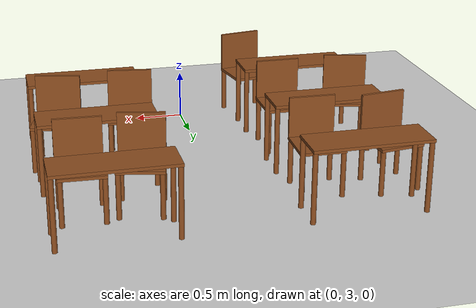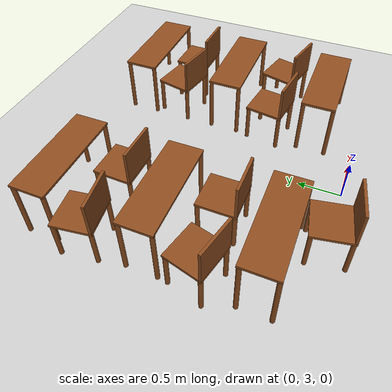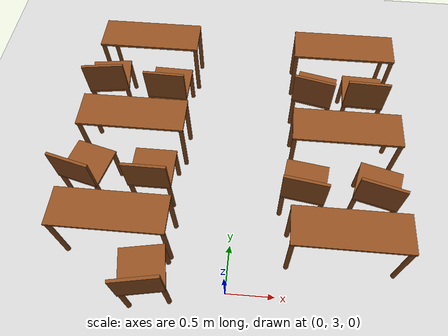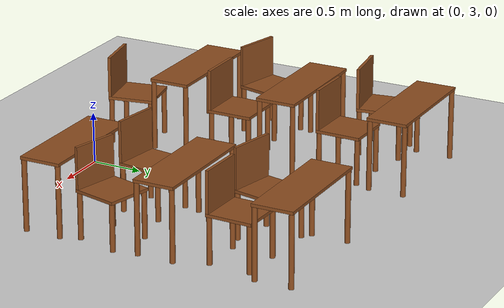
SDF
<sdf version="1.6">
 <world name="lecture_hall_real">
  <include><uri>model://ground_plane</uri></include>
  <include><uri>model://sun</uri></include>
  <model name="desk_1_1">
   <static>true</static>
   <pose>-1.150 5.800 0 0 0 0</pose>
   <link name="link">
    <collision name="c_leg0">
     <pose>-0.550 -0.175 0.345 0 0 0</pose>
     <geometry><cylinder><radius>0.025</radius><length>0.690</length></cylinder></geometry>
    </collision>
    <visual name="v_leg0">
     <pose>-0.550 -0.175 0.345 0 0 0</pose>
     <geometry><cylinder><radius>0.025</radius><length>0.690</length></cylinder></geometry>
     <material><ambient>0.45 0.25 0.1 1</ambient><diffuse>0.55 0.3 0.12 1</diffuse></material>
    </visual>
    <collision name="c_leg1">
     <pose>-0.550 0.175 0.345 0 0 0</pose>
     <geometry><cylinder><radius>0.025</radius><length>0.690</length></cylinder></geometry>
    </collision>
    <visual name="v_leg1">
     <pose>-0.550 0.175 0.345 0 0 0</pose>
     <geometry><cylinder><radius>0.025</radius><length>0.690</length></cylinder></geometry>
     <material><ambient>0.45 0.25 0.1 1</ambient><diffuse>0.55 0.3 0.12 1</diffuse></material>
    </visual>
    <collision name="c_leg2">
     <pose>0.550 -0.175 0.345 0 0 0</pose>
     <geometry><cylinder><radius>0.025</radius><length>0.690</length></cylinder></geometry>
    </collision>
    <visual name="v_leg2">
     <pose>0.550 -0.175 0.345 0 0 0</pose>
     <geometry><cylinder><radius>0.025</radius><length>0.690</length></cylinder></geometry>
     <material><ambient>0.45 0.25 0.1 1</ambient><diffuse>0.55 0.3 0.12 1</diffuse></material>
    </visual>
    <collision name="c_leg3">
     <pose>0.550 0.175 0.345 0 0 0</pose>
     <geometry><cylinder><radius>0.025</radius><length>0.690</length></cylinder></geometry>
    </collision>
    <visual name="v_leg3">
     <pose>0.550 0.175 0.345 0 0 0</pose>
     <geometry><cylinder><radius>0.025</radius><length>0.690</length></cylinder></geometry>
     <material><ambient>0.45 0.25 0.1 1</ambient><diffuse>0.55 0.3 0.12 1</diffuse></material>
    </visual>
    <collision name="c_top">
     <pose>0.000 0.000 0.705 0 0 0</pose>
     <geometry><box><size>1.150 0.400 0.030</size></box></geometry>
    </collision>
    <visual name="v_top">
     <pose>0.000 0.000 0.705 0 0 0</pose>
     <geometry><box><size>1.150 0.400 0.030</size></box></geometry>
     <material><ambient>0.45 0.25 0.1 1</ambient><diffuse>0.55 0.3 0.12 1</diffuse></material>
    </visual>
   </link>
  </model>
  <model name="chair_1_1_1">
   <static>true</static>
   <pose>-1.588 5.332 0 0 0 0.138</pose>
   <link name="link">
    <collision name="c_leg0">
     <pose>-0.200 -0.200 0.225 0 0 0</pose>
     <geometry><cylinder><radius>0.025</radius><length>0.450</length></cylinder></geometry>
    </collision>
    <visual name="v_leg0">
     <pose>-0.200 -0.200 0.225 0 0 0</pose>
     <geometry><cylinder><radius>0.025</radius><length>0.450</length></cylinder></geometry>
     <material><ambient>0.45 0.25 0.1 1</ambient><diffuse>0.55 0.3 0.12 1</diffuse></material>
    </visual>
    <collision name="c_leg1">
     <pose>-0.200 0.200 0.225 0 0 0</pose>
     <geometry><cylinder><radius>0.025</radius><length>0.450</length></cylinder></geometry>
    </collision>
    <visual name="v_leg1">
     <pose>-0.200 0.200 0.225 0 0 0</pose>
     <geometry><cylinder><radius>0.025</radius><length>0.450</length></cylinder></geometry>
     <material><ambient>0.45 0.25 0.1 1</ambient><diffuse>0.55 0.3 0.12 1</diffuse></material>
    </visual>
    <collision name="c_leg2">
     <pose>0.200 -0.200 0.225 0 0 0</pose>
     <geometry><cylinder><radius>0.025</radius><length>0.450</length></cylinder></geometry>
    </collision>
    <visual name="v_leg2">
     <pose>0.200 -0.200 0.225 0 0 0</pose>
     <geometry><cylinder><radius>0.025</radius><length>0.450</length></cylinder></geometry>
     <material><ambient>0.45 0.25 0.1 1</ambient><diffuse>0.55 0.3 0.12 1</diffuse></material>
    </visual>
    <collision name="c_leg3">
     <pose>0.200 0.200 0.225 0 0 0</pose>
     <geometry><cylinder><radius>0.025</radius><length>0.450</length></cylinder></geometry>
    </collision>
    <visual name="v_leg3">
     <pose>0.200 0.200 0.225 0 0 0</pose>
     <geometry><cylinder><radius>0.025</radius><length>0.450</length></cylinder></geometry>
     <material><ambient>0.45 0.25 0.1 1</ambient><diffuse>0.55 0.3 0.12 1</diffuse></material>
    </visual>
    <collision name="c_seat">
     <pose>0.000 0.000 0.465 0 0 0</pose>
     <geometry><box><size>0.450 0.450 0.030</size></box></geometry>
    </collision>
    <visual name="v_seat">
     <pose>0.000 0.000 0.465 0 0 0</pose>
     <geometry><box><size>0.450 0.450 0.030</size></box></geometry>
     <material><ambient>0.45 0.25 0.1 1</ambient><diffuse>0.55 0.3 0.12 1</diffuse></material>
    </visual>
    <collision name="c_back">
     <pose>0.000 -0.210 0.680 0 0 0</pose>
     <geometry><box><size>0.450 0.030 0.400</size></box></geometry>
    </collision>
    <visual name="v_back">
     <pose>0.000 -0.210 0.680 0 0 0</pose>
     <geometry><box><size>0.450 0.030 0.400</size></box></geometry>
     <material><ambient>0.45 0.25 0.1 1</ambient><diffuse>0.55 0.3 0.12 1</diffuse></material>
    </visual>
   </link>
  </model>
  <model name="chair_1_1_2">
   <static>true</static>
   <pose>-0.859 5.279 0 0 0 -0.026</pose>
   <link name="link">
    <collision name="c_leg0">
     <pose>-0.200 -0.200 0.225 0 0 0</pose>
     <geometry><cylinder><radius>0.025</radius><length>0.450</length></cylinder></geometry>
    </collision>
    <visual name="v_leg0">
     <pose>-0.200 -0.200 0.225 0 0 0</pose>
     <geometry><cylinder><radius>0.025</radius><length>0.450</length></cylinder></geometry>
     <material><ambient>0.45 0.25 0.1 1</ambient><diffuse>0.55 0.3 0.12 1</diffuse></material>
    </visual>
    <collision name="c_leg1">
     <pose>-0.200 0.200 0.225 0 0 0</pose>
     <geometry><cylinder><radius>0.025</radius><length>0.450</length></cylinder></geometry>
    </collision>
    <visual name="v_leg1">
     <pose>-0.200 0.200 0.225 0 0 0</pose>
     <geometry><cylinder><radius>0.025</radius><length>0.450</length></cylinder></geometry>
     <material><ambient>0.45 0.25 0.1 1</ambient><diffuse>0.55 0.3 0.12 1</diffuse></material>
    </visual>
    <collision name="c_leg2">
     <pose>0.200 -0.200 0.225 0 0 0</pose>
     <geometry><cylinder><radius>0.025</radius><length>0.450</length></cylinder></geometry>
    </collision>
    <visual name="v_leg2">
     <pose>0.200 -0.200 0.225 0 0 0</pose>
     <geometry><cylinder><radius>0.025</radius><length>0.450</length></cylinder></geometry>
     <material><ambient>0.45 0.25 0.1 1</ambient><diffuse>0.55 0.3 0.12 1</diffuse></material>
    </visual>
    <collision name="c_leg3">
     <pose>0.200 0.200 0.225 0 0 0</pose>
     <geometry><cylinder><radius>0.025</radius><length>0.450</length></cylinder></geometry>
    </collision>
    <visual name="v_leg3">
     <pose>0.200 0.200 0.225 0 0 0</pose>
     <geometry><cylinder><radius>0.025</radius><length>0.450</length></cylinder></geometry>
     <material><ambient>0.45 0.25 0.1 1</ambient><diffuse>0.55 0.3 0.12 1</diffuse></material>
    </visual>
    <collision name="c_seat">
     <pose>0.000 0.000 0.465 0 0 0</pose>
     <geometry><box><size>0.450 0.450 0.030</size></box></geometry>
    </collision>
    <visual name="v_seat">
     <pose>0.000 0.000 0.465 0 0 0</pose>
     <geometry><box><size>0.450 0.450 0.030</size></box></geometry>
     <material><ambient>0.45 0.25 0.1 1</ambient><diffuse>0.55 0.3 0.12 1</diffuse></material>
    </visual>
    <collision name="c_back">
     <pose>0.000 -0.210 0.680 0 0 0</pose>
     <geometry><box><size>0.450 0.030 0.400</size></box></geometry>
    </collision>
    <visual name="v_back">
     <pose>0.000 -0.210 0.680 0 0 0</pose>
     <geometry><box><size>0.450 0.030 0.400</size></box></geometry>
     <material><ambient>0.45 0.25 0.1 1</ambient><diffuse>0.55 0.3 0.12 1</diffuse></material>
    </visual>
   </link>
  </model>
  <model name="desk_1_2">
   <static>true</static>
   <pose>1.150 5.800 0 0 0 0</pose>
   <link name="link">
    <collision name="c_leg0">
     <pose>-0.550 -0.175 0.345 0 0 0</pose>
     <geometry><cylinder><radius>0.025</radius><length>0.690</length></cylinder></geometry>
    </collision>
    <visual name="v_leg0">
     <pose>-0.550 -0.175 0.345 0 0 0</pose>
     <geometry><cylinder><radius>0.025</radius><length>0.690</length></cylinder></geometry>
     <material><ambient>0.45 0.25 0.1 1</ambient><diffuse>0.55 0.3 0.12 1</diffuse></material>
    </visual>
    <collision name="c_leg1">
     <pose>-0.550 0.175 0.345 0 0 0</pose>
     <geometry><cylinder><radius>0.025</radius><length>0.690</length></cylinder></geometry>
    </collision>
    <visual name="v_leg1">
     <pose>-0.550 0.175 0.345 0 0 0</pose>
     <geometry><cylinder><radius>0.025</radius><length>0.690</length></cylinder></geometry>
     <material><ambient>0.45 0.25 0.1 1</ambient><diffuse>0.55 0.3 0.12 1</diffuse></material>
    </visual>
    <collision name="c_leg2">
     <pose>0.550 -0.175 0.345 0 0 0</pose>
     <geometry><cylinder><radius>0.025</radius><length>0.690</length></cylinder></geometry>
    </collision>
    <visual name="v_leg2">
     <pose>0.550 -0.175 0.345 0 0 0</pose>
     <geometry><cylinder><radius>0.025</radius><length>0.690</length></cylinder></geometry>
     <material><ambient>0.45 0.25 0.1 1</ambient><diffuse>0.55 0.3 0.12 1</diffuse></material>
    </visual>
    <collision name="c_leg3">
     <pose>0.550 0.175 0.345 0 0 0</pose>
     <geometry><cylinder><radius>0.025</radius><length>0.690</length></cylinder></geometry>
    </collision>
    <visual name="v_leg3">
     <pose>0.550 0.175 0.345 0 0 0</pose>
     <geometry><cylinder><radius>0.025</radius><length>0.690</length></cylinder></geometry>
     <material><ambient>0.45 0.25 0.1 1</ambient><diffuse>0.55 0.3 0.12 1</diffuse></material>
    </visual>
    <collision name="c_top">
     <pose>0.000 0.000 0.705 0 0 0</pose>
     <geometry><box><size>1.150 0.400 0.030</size></box></geometry>
    </collision>
    <visual name="v_top">
     <pose>0.000 0.000 0.705 0 0 0</pose>
     <geometry><box><size>1.150 0.400 0.030</size></box></geometry>
     <material><ambient>0.45 0.25 0.1 1</ambient><diffuse>0.55 0.3 0.12 1</diffuse></material>
    </visual>
   </link>
  </model>
  <model name="chair_1_2_1">
   <static>true</static>
   <pose>0.836 5.323 0 0 0 -0.213</pose>
   <link name="link">
    <collision name="c_leg0">
     <pose>-0.200 -0.200 0.225 0 0 0</pose>
     <geometry><cylinder><radius>0.025</radius><length>0.450</length></cylinder></geometry>
    </collision>
    <visual name="v_leg0">
     <pose>-0.200 -0.200 0.225 0 0 0</pose>
     <geometry><cylinder><radius>0.025</radius><length>0.450</length></cylinder></geometry>
     <material><ambient>0.45 0.25 0.1 1</ambient><diffuse>0.55 0.3 0.12 1</diffuse></material>
    </visual>
    <collision name="c_leg1">
     <pose>-0.200 0.200 0.225 0 0 0</pose>
     <geometry><cylinder><radius>0.025</radius><length>0.450</length></cylinder></geometry>
    </collision>
    <visual name="v_leg1">
     <pose>-0.200 0.200 0.225 0 0 0</pose>
     <geometry><cylinder><radius>0.025</radius><length>0.450</length></cylinder></geometry>
     <material><ambient>0.45 0.25 0.1 1</ambient><diffuse>0.55 0.3 0.12 1</diffuse></material>
    </visual>
    <collision name="c_leg2">
     <pose>0.200 -0.200 0.225 0 0 0</pose>
     <geometry><cylinder><radius>0.025</radius><length>0.450</length></cylinder></geometry>
    </collision>
    <visual name="v_leg2">
     <pose>0.200 -0.200 0.225 0 0 0</pose>
     <geometry><cylinder><radius>0.025</radius><length>0.450</length></cylinder></geometry>
     <material><ambient>0.45 0.25 0.1 1</ambient><diffuse>0.55 0.3 0.12 1</diffuse></material>
    </visual>
    <collision name="c_leg3">
     <pose>0.200 0.200 0.225 0 0 0</pose>
     <geometry><cylinder><radius>0.025</radius><length>0.450</length></cylinder></geometry>
    </collision>
    <visual name="v_leg3">
     <pose>0.200 0.200 0.225 0 0 0</pose>
     <geometry><cylinder><radius>0.025</radius><length>0.450</length></cylinder></geometry>
     <material><ambient>0.45 0.25 0.1 1</ambient><diffuse>0.55 0.3 0.12 1</diffuse></material>
    </visual>
    <collision name="c_seat">
     <pose>0.000 0.000 0.465 0 0 0</pose>
     <geometry><box><size>0.450 0.450 0.030</size></box></geometry>
    </collision>
    <visual name="v_seat">
     <pose>0.000 0.000 0.465 0 0 0</pose>
     <geometry><box><size>0.450 0.450 0.030</size></box></geometry>
     <material><ambient>0.45 0.25 0.1 1</ambient><diffuse>0.55 0.3 0.12 1</diffuse></material>
    </visual>
    <collision name="c_back">
     <pose>0.000 -0.210 0.680 0 0 0</pose>
     <geometry><box><size>0.450 0.030 0.400</size></box></geometry>
    </collision>
    <visual name="v_back">
     <pose>0.000 -0.210 0.680 0 0 0</pose>
     <geometry><box><size>0.450 0.030 0.400</size></box></geometry>
     <material><ambient>0.45 0.25 0.1 1</ambient><diffuse>0.55 0.3 0.12 1</diffuse></material>
    </visual>
   </link>
  </model>
  <model name="chair_1_2_2">
   <static>true</static>
   <pose>1.387 5.330 0 0 0 -0.035</pose>
   <link name="link">
    <collision name="c_leg0">
     <pose>-0.200 -0.200 0.225 0 0 0</pose>
     <geometry><cylinder><radius>0.025</radius><length>0.450</length></cylinder></geometry>
    </collision>
    <visual name="v_leg0">
     <pose>-0.200 -0.200 0.225 0 0 0</pose>
     <geometry><cylinder><radius>0.025</radius><length>0.450</length></cylinder></geometry>
     <material><ambient>0.45 0.25 0.1 1</ambient><diffuse>0.55 0.3 0.12 1</diffuse></material>
    </visual>
    <collision name="c_leg1">
     <pose>-0.200 0.200 0.225 0 0 0</pose>
     <geometry><cylinder><radius>0.025</radius><length>0.450</length></cylinder></geometry>
    </collision>
    <visual name="v_leg1">
     <pose>-0.200 0.200 0.225 0 0 0</pose>
     <geometry><cylinder><radius>0.025</radius><length>0.450</length></cylinder></geometry>
     <material><ambient>0.45 0.25 0.1 1</ambient><diffuse>0.55 0.3 0.12 1</diffuse></material>
    </visual>
    <collision name="c_leg2">
     <pose>0.200 -0.200 0.225 0 0 0</pose>
     <geometry><cylinder><radius>0.025</radius><length>0.450</length></cylinder></geometry>
    </collision>
    <visual name="v_leg2">
     <pose>0.200 -0.200 0.225 0 0 0</pose>
     <geometry><cylinder><radius>0.025</radius><length>0.450</length></cylinder></geometry>
     <material><ambient>0.45 0.25 0.1 1</ambient><diffuse>0.55 0.3 0.12 1</diffuse></material>
    </visual>
    <collision name="c_leg3">
     <pose>0.200 0.200 0.225 0 0 0</pose>
     <geometry><cylinder><radius>0.025</radius><length>0.450</length></cylinder></geometry>
    </collision>
    <visual name="v_leg3">
     <pose>0.200 0.200 0.225 0 0 0</pose>
     <geometry><cylinder><radius>0.025</radius><length>0.450</length></cylinder></geometry>
     <material><ambient>0.45 0.25 0.1 1</ambient><diffuse>0.55 0.3 0.12 1</diffuse></material>
    </visual>
    <collision name="c_seat">
     <pose>0.000 0.000 0.465 0 0 0</pose>
     <geometry><box><size>0.450 0.450 0.030</size></box></geometry>
    </collision>
    <visual name="v_seat">
     <pose>0.000 0.000 0.465 0 0 0</pose>
     <geometry><box><size>0.450 0.450 0.030</size></box></geometry>
     <material><ambient>0.45 0.25 0.1 1</ambient><diffuse>0.55 0.3 0.12 1</diffuse></material>
    </visual>
    <collision name="c_back">
     <pose>0.000 -0.210 0.680 0 0 0</pose>
     <geometry><box><size>0.450 0.030 0.400</size></box></geometry>
    </collision>
    <visual name="v_back">
     <pose>0.000 -0.210 0.680 0 0 0</pose>
     <geometry><box><size>0.450 0.030 0.400</size></box></geometry>
     <material><ambient>0.45 0.25 0.1 1</ambient><diffuse>0.55 0.3 0.12 1</diffuse></material>
    </visual>
   </link>
  </model>
  <model name="desk_2_1">
   <static>true</static>
   <pose>-1.150 4.650 0 0 0 0</pose>
   <link name="link">
    <collision name="c_leg0">
     <pose>-0.550 -0.175 0.345 0 0 0</pose>
     <geometry><cylinder><radius>0.025</radius><length>0.690</length></cylinder></geometry>
    </collision>
    <visual name="v_leg0">
     <pose>-0.550 -0.175 0.345 0 0 0</pose>
     <geometry><cylinder><radius>0.025</radius><length>0.690</length></cylinder></geometry>
     <material><ambient>0.45 0.25 0.1 1</ambient><diffuse>0.55 0.3 0.12 1</diffuse></material>
    </visual>
    <collision name="c_leg1">
     <pose>-0.550 0.175 0.345 0 0 0</pose>
     <geometry><cylinder><radius>0.025</radius><length>0.690</length></cylinder></geometry>
    </collision>
    <visual name="v_leg1">
     <pose>-0.550 0.175 0.345 0 0 0</pose>
     <geometry><cylinder><radius>0.025</radius><length>0.690</length></cylinder></geometry>
     <material><ambient>0.45 0.25 0.1 1</ambient><diffuse>0.55 0.3 0.12 1</diffuse></material>
    </visual>
    <collision name="c_leg2">
     <pose>0.550 -0.175 0.345 0 0 0</pose>
     <geometry><cylinder><radius>0.025</radius><length>0.690</length></cylinder></geometry>
    </collision>
    <visual name="v_leg2">
     <pose>0.550 -0.175 0.345 0 0 0</pose>
     <geometry><cylinder><radius>0.025</radius><length>0.690</length></cylinder></geometry>
     <material><ambient>0.45 0.25 0.1 1</ambient><diffuse>0.55 0.3 0.12 1</diffuse></material>
    </visual>
    <collision name="c_leg3">
     <pose>0.550 0.175 0.345 0 0 0</pose>
     <geometry><cylinder><radius>0.025</radius><length>0.690</length></cylinder></geometry>
    </collision>
    <visual name="v_leg3">
     <pose>0.550 0.175 0.345 0 0 0</pose>
     <geometry><cylinder><radius>0.025</radius><length>0.690</length></cylinder></geometry>
     <material><ambient>0.45 0.25 0.1 1</ambient><diffuse>0.55 0.3 0.12 1</diffuse></material>
    </visual>
    <collision name="c_top">
     <pose>0.000 0.000 0.705 0 0 0</pose>
     <geometry><box><size>1.150 0.400 0.030</size></box></geometry>
    </collision>
    <visual name="v_top">
     <pose>0.000 0.000 0.705 0 0 0</pose>
     <geometry><box><size>1.150 0.400 0.030</size></box></geometry>
     <material><ambient>0.45 0.25 0.1 1</ambient><diffuse>0.55 0.3 0.12 1</diffuse></material>
    </visual>
   </link>
  </model>
  <model name="chair_2_1_1">
   <static>true</static>
   <pose>-1.568 4.118 0 0 0 -0.247</pose>
   <link name="link">
    <collision name="c_leg0">
     <pose>-0.200 -0.200 0.225 0 0 0</pose>
     <geometry><cylinder><radius>0.025</radius><length>0.450</length></cylinder></geometry>
    </collision>
    <visual name="v_leg0">
     <pose>-0.200 -0.200 0.225 0 0 0</pose>
     <geometry><cylinder><radius>0.025</radius><length>0.450</length></cylinder></geometry>
     <material><ambient>0.45 0.25 0.1 1</ambient><diffuse>0.55 0.3 0.12 1</diffuse></material>
    </visual>
    <collision name="c_leg1">
     <pose>-0.200 0.200 0.225 0 0 0</pose>
     <geometry><cylinder><radius>0.025</radius><length>0.450</length></cylinder></geometry>
    </collision>
    <visual name="v_leg1">
     <pose>-0.200 0.200 0.225 0 0 0</pose>
     <geometry><cylinder><radius>0.025</radius><length>0.450</length></cylinder></geometry>
     <material><ambient>0.45 0.25 0.1 1</ambient><diffuse>0.55 0.3 0.12 1</diffuse></material>
    </visual>
    <collision name="c_leg2">
     <pose>0.200 -0.200 0.225 0 0 0</pose>
     <geometry><cylinder><radius>0.025</radius><length>0.450</length></cylinder></geometry>
    </collision>
    <visual name="v_leg2">
     <pose>0.200 -0.200 0.225 0 0 0</pose>
     <geometry><cylinder><radius>0.025</radius><length>0.450</length></cylinder></geometry>
     <material><ambient>0.45 0.25 0.1 1</ambient><diffuse>0.55 0.3 0.12 1</diffuse></material>
    </visual>
    <collision name="c_leg3">
     <pose>0.200 0.200 0.225 0 0 0</pose>
     <geometry><cylinder><radius>0.025</radius><length>0.450</length></cylinder></geometry>
    </collision>
    <visual name="v_leg3">
     <pose>0.200 0.200 0.225 0 0 0</pose>
     <geometry><cylinder><radius>0.025</radius><length>0.450</length></cylinder></geometry>
     <material><ambient>0.45 0.25 0.1 1</ambient><diffuse>0.55 0.3 0.12 1</diffuse></material>
    </visual>
    <collision name="c_seat">
     <pose>0.000 0.000 0.465 0 0 0</pose>
     <geometry><box><size>0.450 0.450 0.030</size></box></geometry>
    </collision>
    <visual name="v_seat">
     <pose>0.000 0.000 0.465 0 0 0</pose>
     <geometry><box><size>0.450 0.450 0.030</size></box></geometry>
     <material><ambient>0.45 0.25 0.1 1</ambient><diffuse>0.55 0.3 0.12 1</diffuse></material>
    </visual>
    <collision name="c_back">
     <pose>0.000 -0.210 0.680 0 0 0</pose>
     <geometry><box><size>0.450 0.030 0.400</size></box></geometry>
    </collision>
    <visual name="v_back">
     <pose>0.000 -0.210 0.680 0 0 0</pose>
     <geometry><box><size>0.450 0.030 0.400</size></box></geometry>
     <material><ambient>0.45 0.25 0.1 1</ambient><diffuse>0.55 0.3 0.12 1</diffuse></material>
    </visual>
   </link>
  </model>
  <model name="chair_2_1_2">
   <static>true</static>
   <pose>-0.867 4.121 0 0 0 -0.002</pose>
   <link name="link">
    <collision name="c_leg0">
     <pose>-0.200 -0.200 0.225 0 0 0</pose>
     <geometry><cylinder><radius>0.025</radius><length>0.450</length></cylinder></geometry>
    </collision>
    <visual name="v_leg0">
     <pose>-0.200 -0.200 0.225 0 0 0</pose>
     <geometry><cylinder><radius>0.025</radius><length>0.450</length></cylinder></geometry>
     <material><ambient>0.45 0.25 0.1 1</ambient><diffuse>0.55 0.3 0.12 1</diffuse></material>
    </visual>
    <collision name="c_leg1">
     <pose>-0.200 0.200 0.225 0 0 0</pose>
     <geometry><cylinder><radius>0.025</radius><length>0.450</length></cylinder></geometry>
    </collision>
    <visual name="v_leg1">
     <pose>-0.200 0.200 0.225 0 0 0</pose>
     <geometry><cylinder><radius>0.025</radius><length>0.450</length></cylinder></geometry>
     <material><ambient>0.45 0.25 0.1 1</ambient><diffuse>0.55 0.3 0.12 1</diffuse></material>
    </visual>
    <collision name="c_leg2">
     <pose>0.200 -0.200 0.225 0 0 0</pose>
     <geometry><cylinder><radius>0.025</radius><length>0.450</length></cylinder></geometry>
    </collision>
    <visual name="v_leg2">
     <pose>0.200 -0.200 0.225 0 0 0</pose>
     <geometry><cylinder><radius>0.025</radius><length>0.450</length></cylinder></geometry>
     <material><ambient>0.45 0.25 0.1 1</ambient><diffuse>0.55 0.3 0.12 1</diffuse></material>
    </visual>
    <collision name="c_leg3">
     <pose>0.200 0.200 0.225 0 0 0</pose>
     <geometry><cylinder><radius>0.025</radius><length>0.450</length></cylinder></geometry>
    </collision>
    <visual name="v_leg3">
     <pose>0.200 0.200 0.225 0 0 0</pose>
     <geometry><cylinder><radius>0.025</radius><length>0.450</length></cylinder></geometry>
     <material><ambient>0.45 0.25 0.1 1</ambient><diffuse>0.55 0.3 0.12 1</diffuse></material>
    </visual>
    <collision name="c_seat">
     <pose>0.000 0.000 0.465 0 0 0</pose>
     <geometry><box><size>0.450 0.450 0.030</size></box></geometry>
    </collision>
    <visual name="v_seat">
     <pose>0.000 0.000 0.465 0 0 0</pose>
     <geometry><box><size>0.450 0.450 0.030</size></box></geometry>
     <material><ambient>0.45 0.25 0.1 1</ambient><diffuse>0.55 0.3 0.12 1</diffuse></material>
    </visual>
    <collision name="c_back">
     <pose>0.000 -0.210 0.680 0 0 0</pose>
     <geometry><box><size>0.450 0.030 0.400</size></box></geometry>
    </collision>
    <visual name="v_back">
     <pose>0.000 -0.210 0.680 0 0 0</pose>
     <geometry><box><size>0.450 0.030 0.400</size></box></geometry>
     <material><ambient>0.45 0.25 0.1 1</ambient><diffuse>0.55 0.3 0.12 1</diffuse></material>
    </visual>
   </link>
  </model>
  <model name="desk_2_2">
   <static>true</static>
   <pose>1.150 4.650 0 0 0 0</pose>
   <link name="link">
    <collision name="c_leg0">
     <pose>-0.550 -0.175 0.345 0 0 0</pose>
     <geometry><cylinder><radius>0.025</radius><length>0.690</length></cylinder></geometry>
    </collision>
    <visual name="v_leg0">
     <pose>-0.550 -0.175 0.345 0 0 0</pose>
     <geometry><cylinder><radius>0.025</radius><length>0.690</length></cylinder></geometry>
     <material><ambient>0.45 0.25 0.1 1</ambient><diffuse>0.55 0.3 0.12 1</diffuse></material>
    </visual>
    <collision name="c_leg1">
     <pose>-0.550 0.175 0.345 0 0 0</pose>
     <geometry><cylinder><radius>0.025</radius><length>0.690</length></cylinder></geometry>
    </collision>
    <visual name="v_leg1">
     <pose>-0.550 0.175 0.345 0 0 0</pose>
     <geometry><cylinder><radius>0.025</radius><length>0.690</length></cylinder></geometry>
     <material><ambient>0.45 0.25 0.1 1</ambient><diffuse>0.55 0.3 0.12 1</diffuse></material>
    </visual>
    <collision name="c_leg2">
     <pose>0.550 -0.175 0.345 0 0 0</pose>
     <geometry><cylinder><radius>0.025</radius><length>0.690</length></cylinder></geometry>
    </collision>
    <visual name="v_leg2">
     <pose>0.550 -0.175 0.345 0 0 0</pose>
     <geometry><cylinder><radius>0.025</radius><length>0.690</length></cylinder></geometry>
     <material><ambient>0.45 0.25 0.1 1</ambient><diffuse>0.55 0.3 0.12 1</diffuse></material>
    </visual>
    <collision name="c_leg3">
     <pose>0.550 0.175 0.345 0 0 0</pose>
     <geometry><cylinder><radius>0.025</radius><length>0.690</length></cylinder></geometry>
    </collision>
    <visual name="v_leg3">
     <pose>0.550 0.175 0.345 0 0 0</pose>
     <geometry><cylinder><radius>0.025</radius><length>0.690</length></cylinder></geometry>
     <material><ambient>0.45 0.25 0.1 1</ambient><diffuse>0.55 0.3 0.12 1</diffuse></material>
    </visual>
    <collision name="c_top">
     <pose>0.000 0.000 0.705 0 0 0</pose>
     <geometry><box><size>1.150 0.400 0.030</size></box></geometry>
    </collision>
    <visual name="v_top">
     <pose>0.000 0.000 0.705 0 0 0</pose>
     <geometry><box><size>1.150 0.400 0.030</size></box></geometry>
     <material><ambient>0.45 0.25 0.1 1</ambient><diffuse>0.55 0.3 0.12 1</diffuse></material>
    </visual>
   </link>
  </model>
  <model name="chair_2_2_1">
   <static>true</static>
   <pose>0.736 4.090 0 0 0 -0.147</pose>
   <link name="link">
    <collision name="c_leg0">
     <pose>-0.200 -0.200 0.225 0 0 0</pose>
     <geometry><cylinder><radius>0.025</radius><length>0.450</length></cylinder></geometry>
    </collision>
    <visual name="v_leg0">
     <pose>-0.200 -0.200 0.225 0 0 0</pose>
     <geometry><cylinder><radius>0.025</radius><length>0.450</length></cylinder></geometry>
     <material><ambient>0.45 0.25 0.1 1</ambient><diffuse>0.55 0.3 0.12 1</diffuse></material>
    </visual>
    <collision name="c_leg1">
     <pose>-0.200 0.200 0.225 0 0 0</pose>
     <geometry><cylinder><radius>0.025</radius><length>0.450</length></cylinder></geometry>
    </collision>
    <visual name="v_leg1">
     <pose>-0.200 0.200 0.225 0 0 0</pose>
     <geometry><cylinder><radius>0.025</radius><length>0.450</length></cylinder></geometry>
     <material><ambient>0.45 0.25 0.1 1</ambient><diffuse>0.55 0.3 0.12 1</diffuse></material>
    </visual>
    <collision name="c_leg2">
     <pose>0.200 -0.200 0.225 0 0 0</pose>
     <geometry><cylinder><radius>0.025</radius><length>0.450</length></cylinder></geometry>
    </collision>
    <visual name="v_leg2">
     <pose>0.200 -0.200 0.225 0 0 0</pose>
     <geometry><cylinder><radius>0.025</radius><length>0.450</length></cylinder></geometry>
     <material><ambient>0.45 0.25 0.1 1</ambient><diffuse>0.55 0.3 0.12 1</diffuse></material>
    </visual>
    <collision name="c_leg3">
     <pose>0.200 0.200 0.225 0 0 0</pose>
     <geometry><cylinder><radius>0.025</radius><length>0.450</length></cylinder></geometry>
    </collision>
    <visual name="v_leg3">
     <pose>0.200 0.200 0.225 0 0 0</pose>
     <geometry><cylinder><radius>0.025</radius><length>0.450</length></cylinder></geometry>
     <material><ambient>0.45 0.25 0.1 1</ambient><diffuse>0.55 0.3 0.12 1</diffuse></material>
    </visual>
    <collision name="c_seat">
     <pose>0.000 0.000 0.465 0 0 0</pose>
     <geometry><box><size>0.450 0.450 0.030</size></box></geometry>
    </collision>
    <visual name="v_seat">
     <pose>0.000 0.000 0.465 0 0 0</pose>
     <geometry><box><size>0.450 0.450 0.030</size></box></geometry>
     <material><ambient>0.45 0.25 0.1 1</ambient><diffuse>0.55 0.3 0.12 1</diffuse></material>
    </visual>
    <collision name="c_back">
     <pose>0.000 -0.210 0.680 0 0 0</pose>
     <geometry><box><size>0.450 0.030 0.400</size></box></geometry>
    </collision>
    <visual name="v_back">
     <pose>0.000 -0.210 0.680 0 0 0</pose>
     <geometry><box><size>0.450 0.030 0.400</size></box></geometry>
     <material><ambient>0.45 0.25 0.1 1</ambient><diffuse>0.55 0.3 0.12 1</diffuse></material>
    </visual>
   </link>
  </model>
  <model name="chair_2_2_2">
   <static>true</static>
   <pose>1.490 4.098 0 0 0 -0.251</pose>
   <link name="link">
    <collision name="c_leg0">
     <pose>-0.200 -0.200 0.225 0 0 0</pose>
     <geometry><cylinder><radius>0.025</radius><length>0.450</length></cylinder></geometry>
    </collision>
    <visual name="v_leg0">
     <pose>-0.200 -0.200 0.225 0 0 0</pose>
     <geometry><cylinder><radius>0.025</radius><length>0.450</length></cylinder></geometry>
     <material><ambient>0.45 0.25 0.1 1</ambient><diffuse>0.55 0.3 0.12 1</diffuse></material>
    </visual>
    <collision name="c_leg1">
     <pose>-0.200 0.200 0.225 0 0 0</pose>
     <geometry><cylinder><radius>0.025</radius><length>0.450</length></cylinder></geometry>
    </collision>
    <visual name="v_leg1">
     <pose>-0.200 0.200 0.225 0 0 0</pose>
     <geometry><cylinder><radius>0.025</radius><length>0.450</length></cylinder></geometry>
     <material><ambient>0.45 0.25 0.1 1</ambient><diffuse>0.55 0.3 0.12 1</diffuse></material>
    </visual>
    <collision name="c_leg2">
     <pose>0.200 -0.200 0.225 0 0 0</pose>
     <geometry><cylinder><radius>0.025</radius><length>0.450</length></cylinder></geometry>
    </collision>
    <visual name="v_leg2">
     <pose>0.200 -0.200 0.225 0 0 0</pose>
     <geometry><cylinder><radius>0.025</radius><length>0.450</length></cylinder></geometry>
     <material><ambient>0.45 0.25 0.1 1</ambient><diffuse>0.55 0.3 0.12 1</diffuse></material>
    </visual>
    <collision name="c_leg3">
     <pose>0.200 0.200 0.225 0 0 0</pose>
     <geometry><cylinder><radius>0.025</radius><length>0.450</length></cylinder></geometry>
    </collision>
    <visual name="v_leg3">
     <pose>0.200 0.200 0.225 0 0 0</pose>
     <geometry><cylinder><radius>0.025</radius><length>0.450</length></cylinder></geometry>
     <material><ambient>0.45 0.25 0.1 1</ambient><diffuse>0.55 0.3 0.12 1</diffuse></material>
    </visual>
    <collision name="c_seat">
     <pose>0.000 0.000 0.465 0 0 0</pose>
     <geometry><box><size>0.450 0.450 0.030</size></box></geometry>
    </collision>
    <visual name="v_seat">
     <pose>0.000 0.000 0.465 0 0 0</pose>
     <geometry><box><size>0.450 0.450 0.030</size></box></geometry>
     <material><ambient>0.45 0.25 0.1 1</ambient><diffuse>0.55 0.3 0.12 1</diffuse></material>
    </visual>
    <collision name="c_back">
     <pose>0.000 -0.210 0.680 0 0 0</pose>
     <geometry><box><size>0.450 0.030 0.400</size></box></geometry>
    </collision>
    <visual name="v_back">
     <pose>0.000 -0.210 0.680 0 0 0</pose>
     <geometry><box><size>0.450 0.030 0.400</size></box></geometry>
     <material><ambient>0.45 0.25 0.1 1</ambient><diffuse>0.55 0.3 0.12 1</diffuse></material>
    </visual>
   </link>
  </model>
  <model name="desk_3_1">
   <static>true</static>
   <pose>-1.150 3.500 0 0 0 0</pose>
   <link name="link">
    <collision name="c_leg0">
     <pose>-0.550 -0.175 0.345 0 0 0</pose>
     <geometry><cylinder><radius>0.025</radius><length>0.690</length></cylinder></geometry>
    </collision>
    <visual name="v_leg0">
     <pose>-0.550 -0.175 0.345 0 0 0</pose>
     <geometry><cylinder><radius>0.025</radius><length>0.690</length></cylinder></geometry>
     <material><ambient>0.45 0.25 0.1 1</ambient><diffuse>0.55 0.3 0.12 1</diffuse></material>
    </visual>
    <collision name="c_leg1">
     <pose>-0.550 0.175 0.345 0 0 0</pose>
     <geometry><cylinder><radius>0.025</radius><length>0.690</length></cylinder></geometry>
    </collision>
    <visual name="v_leg1">
     <pose>-0.550 0.175 0.345 0 0 0</pose>
     <geometry><cylinder><radius>0.025</radius><length>0.690</length></cylinder></geometry>
     <material><ambient>0.45 0.25 0.1 1</ambient><diffuse>0.55 0.3 0.12 1</diffuse></material>
    </visual>
    <collision name="c_leg2">
     <pose>0.550 -0.175 0.345 0 0 0</pose>
     <geometry><cylinder><radius>0.025</radius><length>0.690</length></cylinder></geometry>
    </collision>
    <visual name="v_leg2">
     <pose>0.550 -0.175 0.345 0 0 0</pose>
     <geometry><cylinder><radius>0.025</radius><length>0.690</length></cylinder></geometry>
     <material><ambient>0.45 0.25 0.1 1</ambient><diffuse>0.55 0.3 0.12 1</diffuse></material>
    </visual>
    <collision name="c_leg3">
     <pose>0.550 0.175 0.345 0 0 0</pose>
     <geometry><cylinder><radius>0.025</radius><length>0.690</length></cylinder></geometry>
    </collision>
    <visual name="v_leg3">
     <pose>0.550 0.175 0.345 0 0 0</pose>
     <geometry><cylinder><radius>0.025</radius><length>0.690</length></cylinder></geometry>
     <material><ambient>0.45 0.25 0.1 1</ambient><diffuse>0.55 0.3 0.12 1</diffuse></material>
    </visual>
    <collision name="c_top">
     <pose>0.000 0.000 0.705 0 0 0</pose>
     <geometry><box><size>1.150 0.400 0.030</size></box></geometry>
    </collision>
    <visual name="v_top">
     <pose>0.000 0.000 0.705 0 0 0</pose>
     <geometry><box><size>1.150 0.400 0.030</size></box></geometry>
     <material><ambient>0.45 0.25 0.1 1</ambient><diffuse>0.55 0.3 0.12 1</diffuse></material>
    </visual>
   </link>
  </model>
  <model name="chair_3_1_2">
   <static>true</static>
   <pose>-0.779 3.037 0 0 0 0.181</pose>
   <link name="link">
    <collision name="c_leg0">
     <pose>-0.200 -0.200 0.225 0 0 0</pose>
     <geometry><cylinder><radius>0.025</radius><length>0.450</length></cylinder></geometry>
    </collision>
    <visual name="v_leg0">
     <pose>-0.200 -0.200 0.225 0 0 0</pose>
     <geometry><cylinder><radius>0.025</radius><length>0.450</length></cylinder></geometry>
     <material><ambient>0.45 0.25 0.1 1</ambient><diffuse>0.55 0.3 0.12 1</diffuse></material>
    </visual>
    <collision name="c_leg1">
     <pose>-0.200 0.200 0.225 0 0 0</pose>
     <geometry><cylinder><radius>0.025</radius><length>0.450</length></cylinder></geometry>
    </collision>
    <visual name="v_leg1">
     <pose>-0.200 0.200 0.225 0 0 0</pose>
     <geometry><cylinder><radius>0.025</radius><length>0.450</length></cylinder></geometry>
     <material><ambient>0.45 0.25 0.1 1</ambient><diffuse>0.55 0.3 0.12 1</diffuse></material>
    </visual>
    <collision name="c_leg2">
     <pose>0.200 -0.200 0.225 0 0 0</pose>
     <geometry><cylinder><radius>0.025</radius><length>0.450</length></cylinder></geometry>
    </collision>
    <visual name="v_leg2">
     <pose>0.200 -0.200 0.225 0 0 0</pose>
     <geometry><cylinder><radius>0.025</radius><length>0.450</length></cylinder></geometry>
     <material><ambient>0.45 0.25 0.1 1</ambient><diffuse>0.55 0.3 0.12 1</diffuse></material>
    </visual>
    <collision name="c_leg3">
     <pose>0.200 0.200 0.225 0 0 0</pose>
     <geometry><cylinder><radius>0.025</radius><length>0.450</length></cylinder></geometry>
    </collision>
    <visual name="v_leg3">
     <pose>0.200 0.200 0.225 0 0 0</pose>
     <geometry><cylinder><radius>0.025</radius><length>0.450</length></cylinder></geometry>
     <material><ambient>0.45 0.25 0.1 1</ambient><diffuse>0.55 0.3 0.12 1</diffuse></material>
    </visual>
    <collision name="c_seat">
     <pose>0.000 0.000 0.465 0 0 0</pose>
     <geometry><box><size>0.450 0.450 0.030</size></box></geometry>
    </collision>
    <visual name="v_seat">
     <pose>0.000 0.000 0.465 0 0 0</pose>
     <geometry><box><size>0.450 0.450 0.030</size></box></geometry>
     <material><ambient>0.45 0.25 0.1 1</ambient><diffuse>0.55 0.3 0.12 1</diffuse></material>
    </visual>
    <collision name="c_back">
     <pose>0.000 -0.210 0.680 0 0 0</pose>
     <geometry><box><size>0.450 0.030 0.400</size></box></geometry>
    </collision>
    <visual name="v_back">
     <pose>0.000 -0.210 0.680 0 0 0</pose>
     <geometry><box><size>0.450 0.030 0.400</size></box></geometry>
     <material><ambient>0.45 0.25 0.1 1</ambient><diffuse>0.55 0.3 0.12 1</diffuse></material>
    </visual>
   </link>
  </model>
  <model name="desk_3_2">
   <static>true</static>
   <pose>1.150 3.500 0 0 0 0</pose>
   <link name="link">
    <collision name="c_leg0">
     <pose>-0.550 -0.175 0.345 0 0 0</pose>
     <geometry><cylinder><radius>0.025</radius><length>0.690</length></cylinder></geometry>
    </collision>
    <visual name="v_leg0">
     <pose>-0.550 -0.175 0.345 0 0 0</pose>
     <geometry><cylinder><radius>0.025</radius><length>0.690</length></cylinder></geometry>
     <material><ambient>0.45 0.25 0.1 1</ambient><diffuse>0.55 0.3 0.12 1</diffuse></material>
    </visual>
    <collision name="c_leg1">
     <pose>-0.550 0.175 0.345 0 0 0</pose>
     <geometry><cylinder><radius>0.025</radius><length>0.690</length></cylinder></geometry>
    </collision>
    <visual name="v_leg1">
     <pose>-0.550 0.175 0.345 0 0 0</pose>
     <geometry><cylinder><radius>0.025</radius><length>0.690</length></cylinder></geometry>
     <material><ambient>0.45 0.25 0.1 1</ambient><diffuse>0.55 0.3 0.12 1</diffuse></material>
    </visual>
    <collision name="c_leg2">
     <pose>0.550 -0.175 0.345 0 0 0</pose>
     <geometry><cylinder><radius>0.025</radius><length>0.690</length></cylinder></geometry>
    </collision>
    <visual name="v_leg2">
     <pose>0.550 -0.175 0.345 0 0 0</pose>
     <geometry><cylinder><radius>0.025</radius><length>0.690</length></cylinder></geometry>
     <material><ambient>0.45 0.25 0.1 1</ambient><diffuse>0.55 0.3 0.12 1</diffuse></material>
    </visual>
    <collision name="c_leg3">
     <pose>0.550 0.175 0.345 0 0 0</pose>
     <geometry><cylinder><radius>0.025</radius><length>0.690</length></cylinder></geometry>
    </collision>
    <visual name="v_leg3">
     <pose>0.550 0.175 0.345 0 0 0</pose>
     <geometry><cylinder><radius>0.025</radius><length>0.690</length></cylinder></geometry>
     <material><ambient>0.45 0.25 0.1 1</ambient><diffuse>0.55 0.3 0.12 1</diffuse></material>
    </visual>
    <collision name="c_top">
     <pose>0.000 0.000 0.705 0 0 0</pose>
     <geometry><box><size>1.150 0.400 0.030</size></box></geometry>
    </collision>
    <visual name="v_top">
     <pose>0.000 0.000 0.705 0 0 0</pose>
     <geometry><box><size>1.150 0.400 0.030</size></box></geometry>
     <material><ambient>0.45 0.25 0.1 1</ambient><diffuse>0.55 0.3 0.12 1</diffuse></material>
    </visual>
   </link>
  </model>
 </world>
</sdf>
